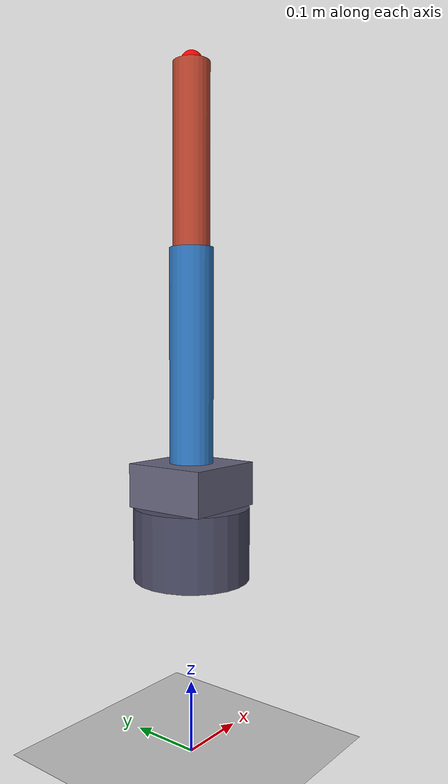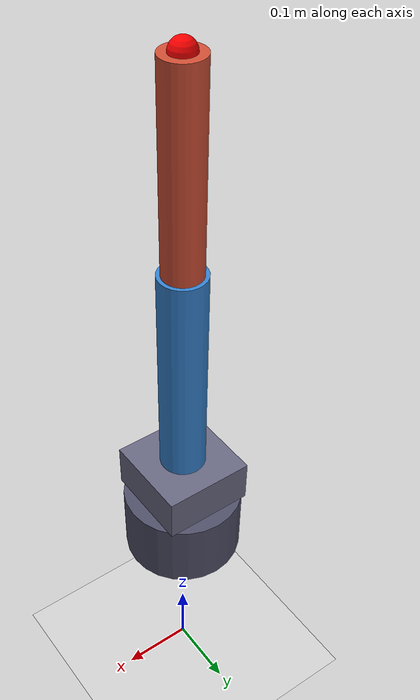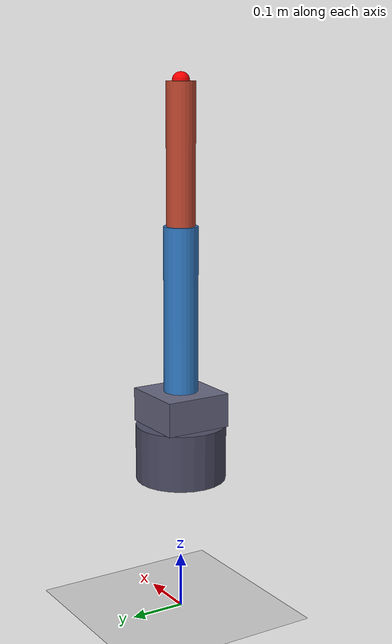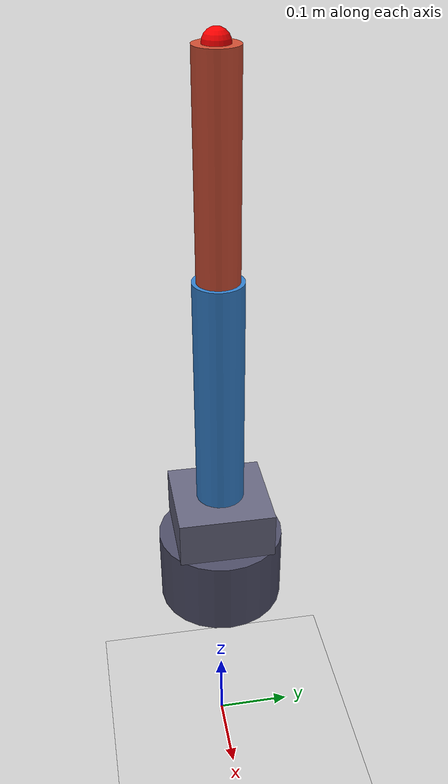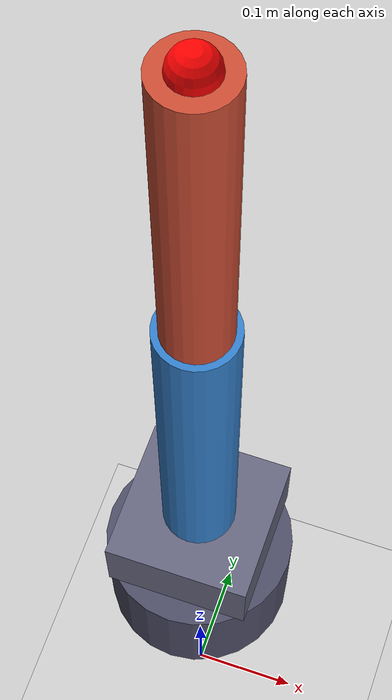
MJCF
<mujoco model="so101_arm">
  <compiler angle="radian"/>

  <worldbody>
    <geom name="floor" size="2 2 0.01" type="plane" rgba="0.8 0.8 0.8 1"/>
    <light pos="2 2 3" dir="-0.57735 -0.57735 -0.57735" diffuse="0.8 0.8 0.8"/>
    <body name="base" pos="0 0 0.3">
      <joint name="base_rotation" pos="0 0 0" axis="0 0 1" range="-1.5708 1.5708"/>
      <geom name="base_cylinder" size="0.08 0.05" type="cylinder" rgba="0.3 0.3 0.4 1"/>
      <geom name="base_top" size="0.06 0.06 0.03" pos="0 0 0.08" type="box" rgba="0.4 0.4 0.5 1"/>
      <geom name="base_ring" size="0.04 0.02" pos="0 0 0.06" type="cylinder" rgba="0.5 0.5 0.6 1"/>
      <body name="upper_arm" pos="0 0 0.1">
        <joint name="shoulder_pitch" pos="0 0 0" axis="0 1 0" range="-1.5708 0.785398"/>
        <geom name="upper_arm_geom" size="0.03 0.15" pos="0 0 0.15" quat="0 1 0 0" type="cylinder" rgba="0.2 0.5 0.8 1"/>
        <body name="forearm" pos="0 0 0.3">
          <joint name="elbow_pitch" pos="0 0 0" axis="0 1 0" range="0 2.35619"/>
          <geom name="forearm_geom" size="0.025 0.12" pos="0 0 0.12" quat="0 1 0 0" type="cylinder" rgba="0.8 0.3 0.2 1"/>
          <site name="end_effector" pos="0 0 0.24" size="0.015" rgba="1 0 0 1"/>
        </body>
      </body>
    </body>
  </worldbody>

  <actuator>
    <general name="act_base" joint="base_rotation" biastype="affine" gainprm="40" biasprm="0 -40 -3"/>
    <general name="act_shoulder" joint="shoulder_pitch" biastype="affine" gainprm="40" biasprm="0 -40 -3"/>
    <general name="act_elbow" joint="elbow_pitch" biastype="affine" gainprm="40" biasprm="0 -40 -3"/>
  </actuator>
</mujoco>
